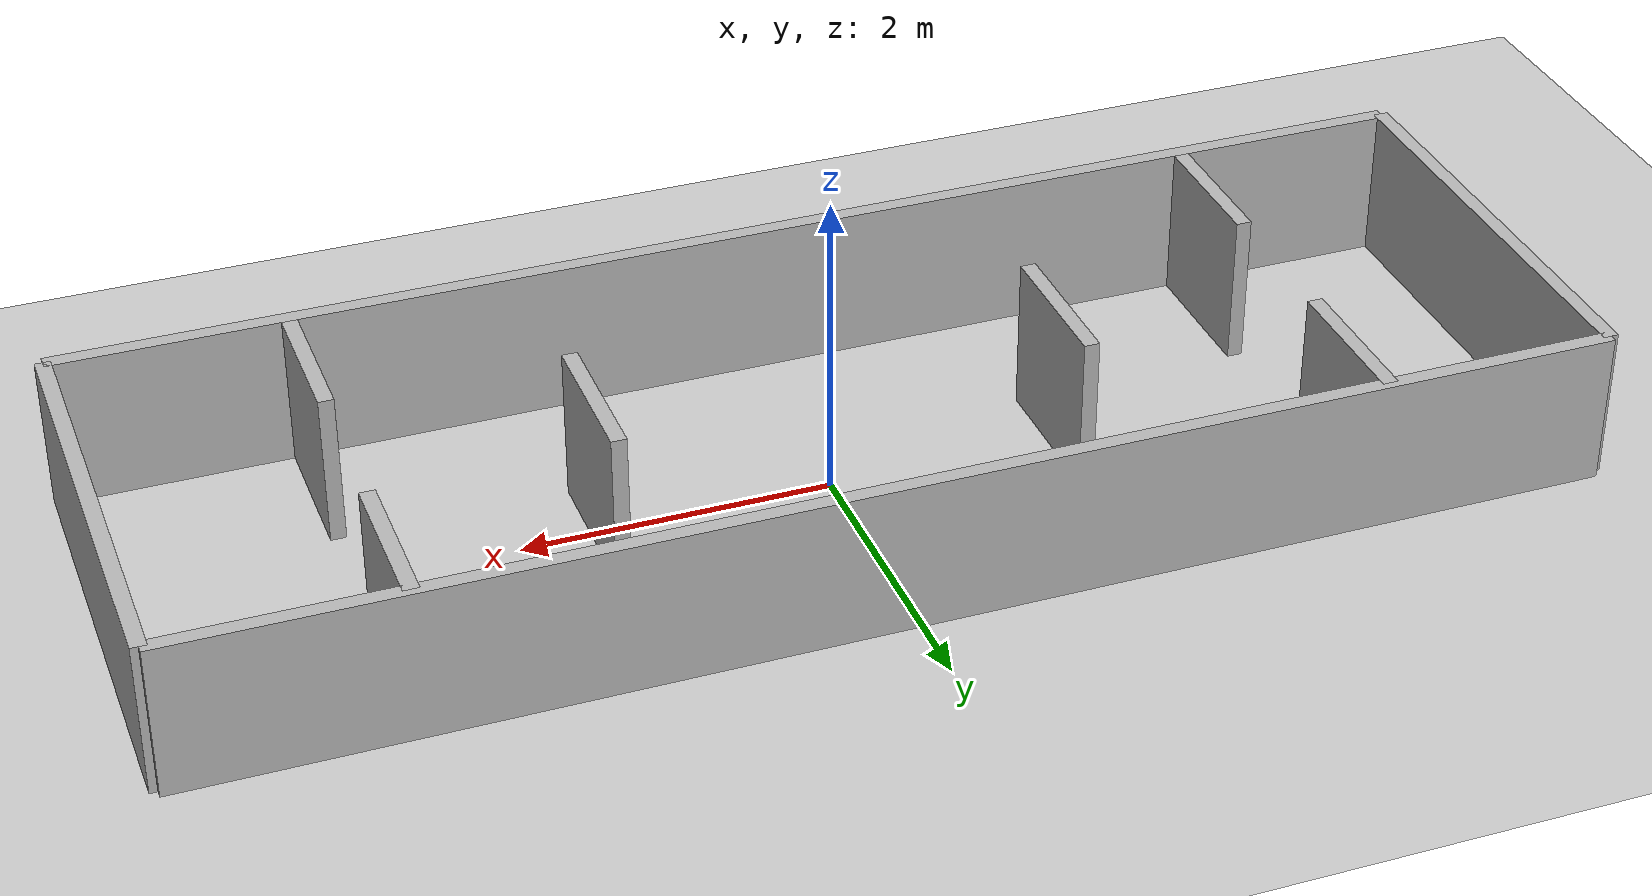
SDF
<?xml version="1.0" ?>
<sdf version="1.6">
  <world name="hallway_obstacles_world">

    <include><uri>model://sun</uri></include>
    <include><uri>model://ground_plane</uri></include>

    <model name="ext_north">
      <static>true</static><pose>0.0 1.5 0.5 0 0 0</pose>
      <link name="link">
        <collision name="col"><geometry><box><size>9.0 0.1 1.0</size></box></geometry></collision>
        <visual name="vis"><geometry><box><size>9.0 0.1 1.0</size></box></geometry></visual>
      </link>
    </model>
    <model name="ext_south">
      <static>true</static><pose>0.0 -1.5 0.5 0 0 0</pose>
      <link name="link">
        <collision name="col"><geometry><box><size>9.0 0.1 1.0</size></box></geometry></collision>
        <visual name="vis"><geometry><box><size>9.0 0.1 1.0</size></box></geometry></visual>
      </link>
    </model>
    <model name="ext_west">
      <static>true</static><pose>-4.5 0.0 0.5 0 0 0</pose>
      <link name="link">
        <collision name="col"><geometry><box><size>0.1 3.0 1.0</size></box></geometry></collision>
        <visual name="vis"><geometry><box><size>0.1 3.0 1.0</size></box></geometry></visual>
      </link>
    </model>
    <model name="ext_east">
      <static>true</static><pose>4.5 0.0 0.5 0 0 0</pose>
      <link name="link">
        <collision name="col"><geometry><box><size>0.1 3.0 1.0</size></box></geometry></collision>
        <visual name="vis"><geometry><box><size>0.1 3.0 1.0</size></box></geometry></visual>
      </link>
    </model>
    <model name="partition_1">
      <static>true</static><pose>-1.5 0.0 0.5 0 0 0</pose>
      <link name="link">
        <collision name="col"><geometry><box><size>0.1 1.0 1.0</size></box></geometry></collision>
        <visual name="vis"><geometry><box><size>0.1 1.0 1.0</size></box></geometry></visual>
      </link>
    </model>
    <model name="partition_2">
      <static>true</static><pose>1.5 0.0 0.5 0 0 0</pose>
      <link name="link">
        <collision name="col"><geometry><box><size>0.1 1.0 1.0</size></box></geometry></collision>
        <visual name="vis"><geometry><box><size>0.1 1.0 1.0</size></box></geometry></visual>
      </link>
    </model>
    <model name="obs_1_north">
      <static>true</static><pose>-3.0 1.0 0.5 0 0 0</pose>
      <link name="link">
        <collision name="col"><geometry><box><size>0.1 1.0 1.0</size></box></geometry></collision>
        <visual name="vis"><geometry><box><size>0.1 1.0 1.0</size></box></geometry></visual>
      </link>
    </model>
    <model name="obs_1_south">
      <static>true</static><pose>-3.0 -1.0 0.5 0 0 0</pose>
      <link name="link">
        <collision name="col"><geometry><box><size>0.1 1.0 1.0</size></box></geometry></collision>
        <visual name="vis"><geometry><box><size>0.1 1.0 1.0</size></box></geometry></visual>
      </link>
    </model>
    <model name="obs_2_north">
      <static>true</static><pose>3.0 1.0 0.5 0 0 0</pose>
      <link name="link">
        <collision name="col"><geometry><box><size>0.1 1.0 1.0</size></box></geometry></collision>
        <visual name="vis"><geometry><box><size>0.1 1.0 1.0</size></box></geometry></visual>
      </link>
    </model>
    <model name="obs_2_south">
      <static>true</static><pose>3.0 -1.0 0.5 0 0 0</pose>
      <link name="link">
        <collision name="col"><geometry><box><size>0.1 1.0 1.0</size></box></geometry></collision>
        <visual name="vis"><geometry><box><size>0.1 1.0 1.0</size></box></geometry></visual>
      </link>
    </model>

  </world>
</sdf>
